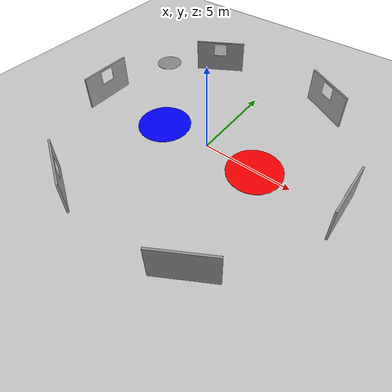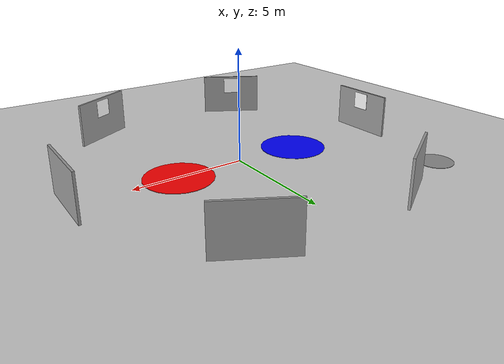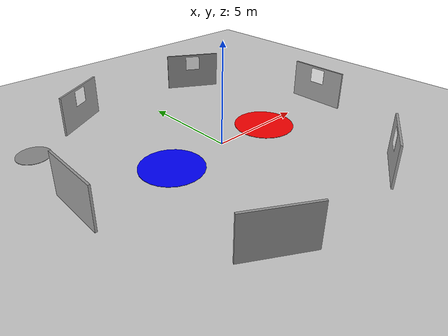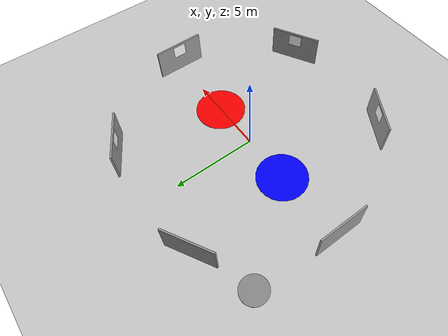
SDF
<?xml version="1.0" ?>
<!-- No inline gz-sim world plugins: PX4 uses GZ_SIM_SERVER_CONFIG_PATH so sensors/contact/IMU load like default.sdf. -->
<sdf version="1.9">
  <!-- Not "world" — Gazebo reserves that name. Must match PX4_GZ_WORLD (see startup.sh → skyw_hexagon). -->
  <world name="skyw_hexagon">
    <physics type="ode">
      <max_step_size>0.004</max_step_size>
      <real_time_factor>1.0</real_time_factor>
      <real_time_update_rate>250</real_time_update_rate>
    </physics>
    <gravity>0 0 -9.8</gravity>
    <magnetic_field>6e-06 2.3e-05 -4.2e-05</magnetic_field>
    <atmosphere type="adiabatic"/>
    <scene>
      <grid>false</grid>
      <ambient>0.4 0.4 0.4 1</ambient>
      <background>0.7 0.7 0.7 1</background>
      <shadows>true</shadows>
    </scene>
    <light type="directional" name="sun">
      <cast_shadows>true</cast_shadows>
      <pose>0 0 10 0 0 0</pose>
      <diffuse>0.8 0.8 0.8 1</diffuse>
      <specular>0.2 0.2 0.2 1</specular>
    </light>
    <spherical_coordinates>
      <surface_model>EARTH_WGS84</surface_model>
      <world_frame_orientation>ENU</world_frame_orientation>
      <latitude_deg>47.397971057728974</latitude_deg>
      <longitude_deg>8.546163739800146</longitude_deg>
      <elevation>0</elevation>
    </spherical_coordinates>
    <model name="ground_plane">
        <static>true</static>
        <link name="link">
            <collision name="collision"><geometry><plane><normal>0 0 1</normal></plane></geometry></collision>
            <visual name="visual"><geometry><plane><normal>0 0 1</normal><size>100 100</size></plane></geometry>
            <material><ambient>0.8 0.8 0.8 1</ambient><diffuse>0.8 0.8 0.8 1</diffuse></material></visual>
        </link>
    </model>
    <model name="landing_pad_red">
        <static>true</static>
        <pose>3 0 0.01 0 0 0</pose>
        <link name="link">
            <visual name="visual"><geometry><cylinder><radius>1.5</radius><length>0.02</length></cylinder></geometry>
            <material><ambient>1.0 0.0 0.0 1</ambient><diffuse>1.0 0.0 0.0 1</diffuse></material></visual>
            <collision name="collision"><geometry><cylinder><radius>1.5</radius><length>0.02</length></cylinder></geometry></collision>
        </link>
    </model>
    <model name="landing_pad_blue">
        <static>true</static>
        <pose>-3 0 0.01 0 0 0</pose>
        <link name="link">
            <visual name="visual"><geometry><cylinder><radius>1.5</radius><length>0.02</length></cylinder></geometry>
            <material><ambient>0.0 0.0 1.0 1</ambient><diffuse>0.0 0.0 1.0 1</diffuse></material></visual>
            <collision name="collision"><geometry><cylinder><radius>1.5</radius><length>0.02</length></cylinder></geometry></collision>
        </link>
    </model>
    <model name="starting_point">
        <static>true</static>
        <pose>-7 5 0.01 0 0 0</pose>
        <link name="link">
            <visual name="visual"><geometry><cylinder><radius>0.8</radius><length>0.02</length></cylinder></geometry>
            <material><ambient>0.55 0.55 0.55 1</ambient><diffuse>0.55 0.55 0.55 1</diffuse></material></visual>
            <collision name="collision"><geometry><cylinder><radius>0.8</radius><length>0.02</length></cylinder></geometry></collision>
        </link>
    </model>

    <model name="wall_1">
      <static>true</static>
      <pose>7.5 0 1 0 0 1.57</pose>
      <link name="link">
        <visual name="v_wall">
          <geometry>
            <box>
              <size>3 0.1 2</size>
            </box>
          </geometry>
          <material>
            <ambient>0.6 0.6 0.6 1</ambient>
            <diffuse>0.6 0.6 0.6 1</diffuse>
          </material>
        </visual>
        <visual name="v_png">
          <pose>0 0.07 0.5 0 0 0</pose>
          <geometry>
            <box>
              <size>0.8 0.01 0.8</size>
            </box>
          </geometry>
          <material>
            <diffuse>1 1 1 1</diffuse>
            <pbr>
              <metal>
                <albedo_map>model://qr_wall/materials/textures/qrcode1.png</albedo_map>
              </metal>
            </pbr>
          </material>
        </visual>
        <collision name="c">
          <geometry>
            <box>
              <size>3 0.1 2</size>
            </box>
          </geometry>
        </collision>
      </link>
    </model>

    <model name="wall_2">
      <static>true</static>
      <pose>3.75 6.495 1 0 0 2.62</pose>
      <link name="link">
        <visual name="v_wall">
          <geometry>
            <box>
              <size>3 0.1 2</size>
            </box>
          </geometry>
          <material>
            <ambient>0.6 0.6 0.6 1</ambient>
            <diffuse>0.6 0.6 0.6 1</diffuse>
          </material>
        </visual>
        <visual name="v_png">
          <pose>0 0.07 0.5 0 0 0</pose>
          <geometry>
            <box>
              <size>0.8 0.01 0.8</size>
            </box>
          </geometry>
          <material>
            <diffuse>1 1 1 1</diffuse>
            <pbr>
              <metal>
                <albedo_map>model://qr_wall/materials/textures/qrcode2.png</albedo_map>
              </metal>
            </pbr>
          </material>
        </visual>
        <collision name="c">
          <geometry>
            <box>
              <size>3 0.1 2</size>
            </box>
          </geometry>
        </collision>
      </link>
    </model>

    <model name="wall_3">
      <static>true</static>
      <pose>-3.75 6.495 1 0 0 3.66</pose>
      <link name="link">
        <visual name="v_wall">
          <geometry>
            <box>
              <size>3 0.1 2</size>
            </box>
          </geometry>
          <material>
            <ambient>0.6 0.6 0.6 1</ambient>
            <diffuse>0.6 0.6 0.6 1</diffuse>
          </material>
        </visual>
        <visual name="v_png">
          <pose>0 0.07 0.5 0 0 0</pose>
          <geometry>
            <box>
              <size>0.8 0.01 0.8</size>
            </box>
          </geometry>
          <material>
            <diffuse>1 1 1 1</diffuse>
            <pbr>
              <metal>
                <albedo_map>model://qr_wall/materials/textures/qrcode3.png</albedo_map>
              </metal>
            </pbr>
          </material>
        </visual>
        <collision name="c">
          <geometry>
            <box>
              <size>3 0.1 2</size>
            </box>
          </geometry>
        </collision>
      </link>
    </model>

    <model name="wall_4">
      <static>true</static>
      <pose>-7.5 0 1 0 0 4.71</pose>
      <link name="link">
        <visual name="v_wall">
          <geometry>
            <box>
              <size>3 0.1 2</size>
            </box>
          </geometry>
          <material>
            <ambient>0.6 0.6 0.6 1</ambient>
            <diffuse>0.6 0.6 0.6 1</diffuse>
          </material>
        </visual>
        <visual name="v_png">
          <pose>0 0.07 0.5 0 0 0</pose>
          <geometry>
            <box>
              <size>0.8 0.01 0.8</size>
            </box>
          </geometry>
          <material>
            <diffuse>1 1 1 1</diffuse>
            <pbr>
              <metal>
                <albedo_map>model://qr_wall/materials/textures/qrcode4.png</albedo_map>
              </metal>
            </pbr>
          </material>
        </visual>
        <collision name="c">
          <geometry>
            <box>
              <size>3 0.1 2</size>
            </box>
          </geometry>
        </collision>
      </link>
    </model>

    <model name="wall_5">
      <static>true</static>
      <pose>-3.75 -6.495 1 0 0 5.76</pose>
      <link name="link">
        <visual name="v_wall">
          <geometry>
            <box>
              <size>3 0.1 2</size>
            </box>
          </geometry>
          <material>
            <ambient>0.6 0.6 0.6 1</ambient>
            <diffuse>0.6 0.6 0.6 1</diffuse>
          </material>
        </visual>
        <visual name="v_png">
          <pose>0 0.07 0.5 0 0 0</pose>
          <geometry>
            <box>
              <size>0.8 0.01 0.8</size>
            </box>
          </geometry>
          <material>
            <diffuse>1 1 1 1</diffuse>
            <pbr>
              <metal>
                <albedo_map>model://qr_wall/materials/textures/qrcode5.png</albedo_map>
              </metal>
            </pbr>
          </material>
        </visual>
        <collision name="c">
          <geometry>
            <box>
              <size>3 0.1 2</size>
            </box>
          </geometry>
        </collision>
      </link>
    </model>

    <model name="wall_6">
      <static>true</static>
      <pose>3.75 -6.495 1 0 0 0.52</pose>
      <link name="link">
        <visual name="v_wall">
          <geometry>
            <box>
              <size>3 0.1 2</size>
            </box>
          </geometry>
          <material>
            <ambient>0.6 0.6 0.6 1</ambient>
            <diffuse>0.6 0.6 0.6 1</diffuse>
          </material>
        </visual>
        <visual name="v_png">
          <pose>0 0.07 0.5 0 0 0</pose>
          <geometry>
            <box>
              <size>0.8 0.01 0.8</size>
            </box>
          </geometry>
          <material>
            <diffuse>1 1 1 1</diffuse>
            <pbr>
              <metal>
                <albedo_map>model://qr_wall/materials/textures/qrcode6.png</albedo_map>
              </metal>
            </pbr>
          </material>
        </visual>
        <collision name="c">
          <geometry>
            <box>
              <size>3 0.1 2</size>
            </box>
          </geometry>
        </collision>
      </link>
    </model>
  </world>
</sdf>
